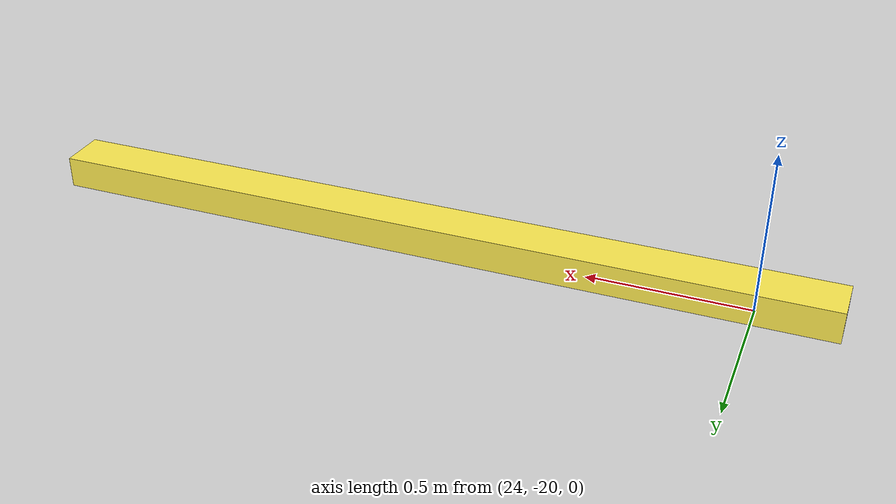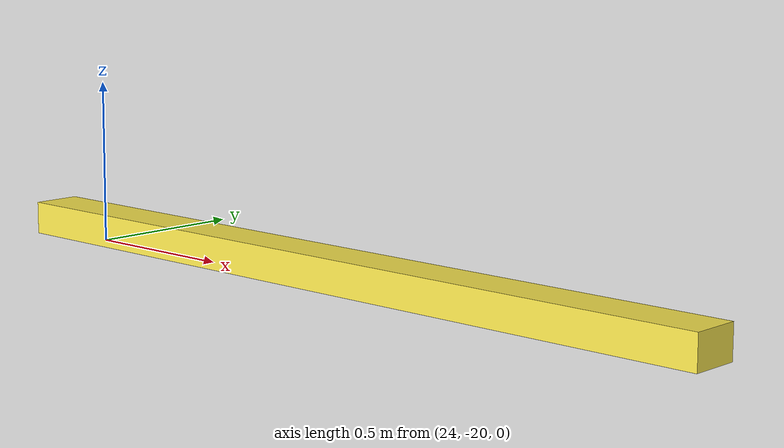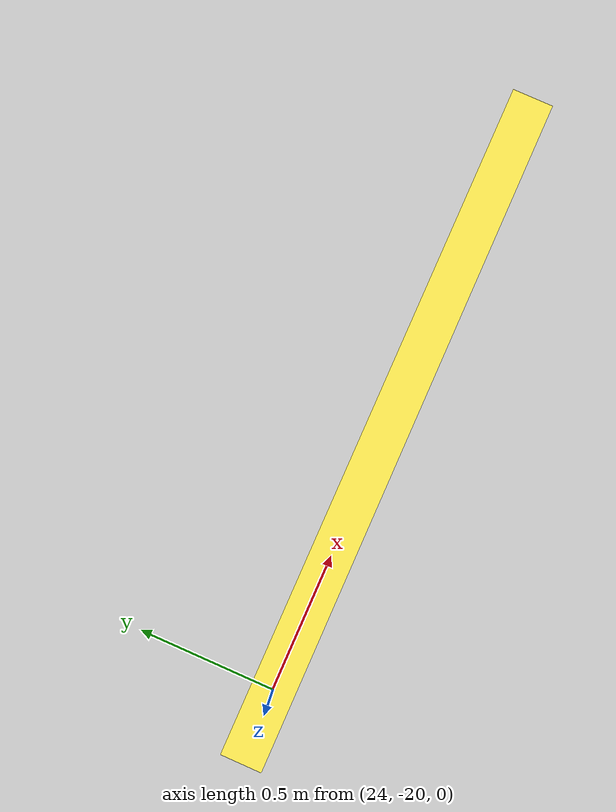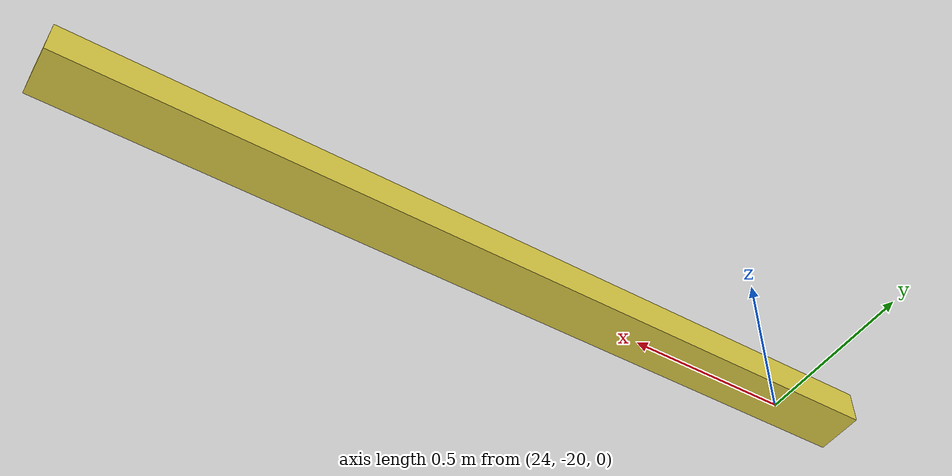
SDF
<?xml version='1.0'?>
<sdf version='1.7'>
  <model name='MiddleLane'>
    <pose>25 -10.0375 0 0 -0 0</pose>
    <link name='MiddleLane_0'>
      <collision name='MiddleLane_0_Collision'>
        <geometry>
          <box>
            <size>2.5 0.15 0.1</size>
          </box>
        </geometry>
        <pose>0 0 0.05 0 -0 0</pose>
      </collision>
      <visual name='MiddleLane_0_Visual'>
        <pose>0 0 0.05 0 -0 0</pose>
        <geometry>
          <box>
            <size>2.5 0.15 0.1</size>
          </box>
        </geometry>
        <material>
          <script>
            <uri>file://media/materials/scripts/gazebo.material</uri>
            <name>Gazebo/Grey</name>
          </script>
          <ambient>0.988235 0.913725 0.309804 1</ambient>
        </material>
        <meta>
          <layer>0</layer>
        </meta>
      </visual>
      <pose>0 -9.9625 0 0 -0 0</pose>
    </link>
    <static>1</static>
  </model>
</sdf>
